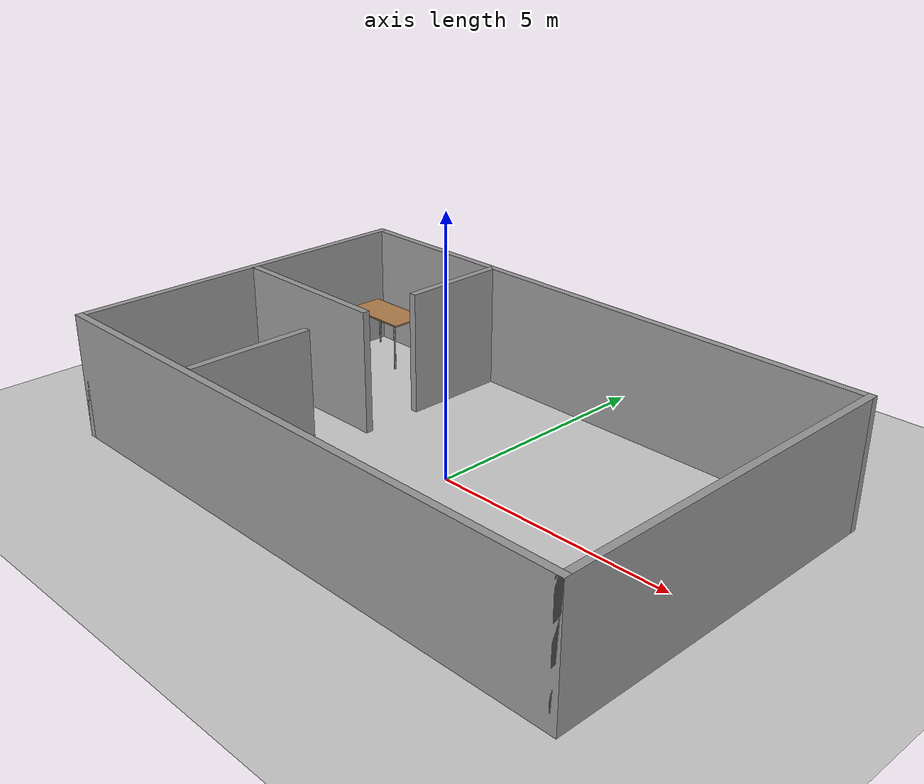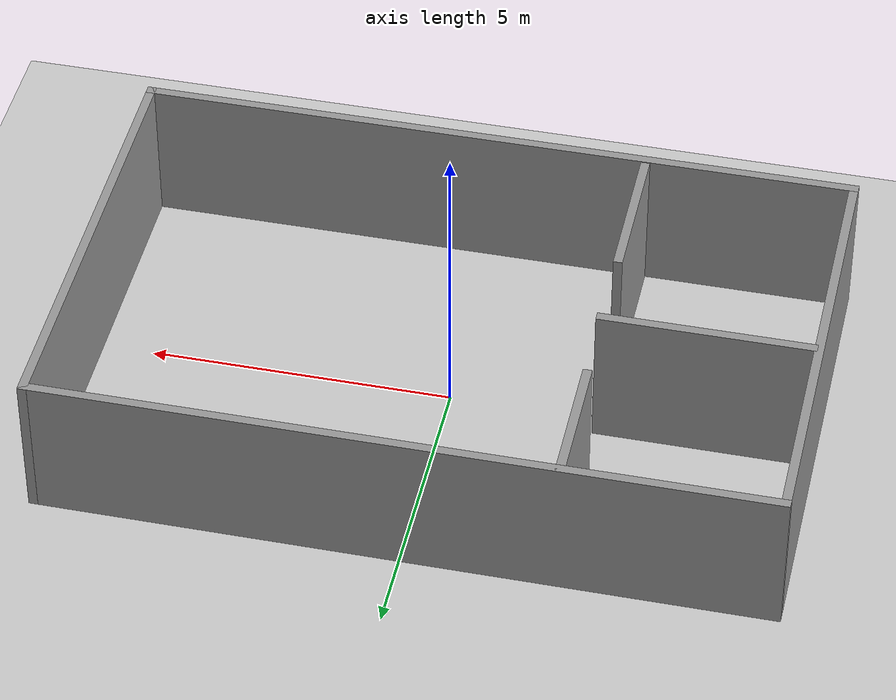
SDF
<sdf version="1.7">
 <world name="default">
  <light name="sun" type="directional">
   <pose>0 0 10 0 -0 0</pose>
   <diffuse>0.8 0.8 0.8 1</diffuse>
   <specular>0.2 0.2 0.2 1</specular>
   <attenuation>
    <range>1000</range>
    <constant>0.9</constant>
    <linear>0.01</linear>
    <quadratic>0.001</quadratic>
   </attenuation>
   <direction>-0.5 0.1 -0.9</direction>
   <spot><inner_angle>0</inner_angle><outer_angle>0</outer_angle><falloff>0</falloff></spot>
  </light>
  <model name="ground_plane">
   <static>1</static>
   <link name="link">
    <collision name="collision">
     <geometry><plane><normal>0 0 1</normal><size>100 100</size></plane></geometry>
     <surface>
      <contact><collide_bitmask>65535</collide_bitmask></contact>
      <friction><ode><mu>100</mu><mu2>50</mu2></ode></friction>
     </surface>
    </collision>
    <visual name="visual">
     <cast_shadows>0</cast_shadows>
     <geometry><plane><normal>0 0 1</normal><size>100 100</size></plane></geometry>
     <material>
      <script><uri>file://media/materials/scripts/gazebo.material</uri><name>Gazebo/Grey</name></script>
     </material>
    </visual>
   </link>
  </model>
  <gravity>0 0 -9.8</gravity>
  <magnetic_field>6e-06 2.3e-05 -4.2e-05</magnetic_field>
  <atmosphere type="adiabatic"/>
  <physics type="ode">
   <max_step_size>0.001</max_step_size>
   <real_time_factor>1</real_time_factor>
   <real_time_update_rate>1000</real_time_update_rate>
  </physics>
  <scene><ambient>0.4 0.4 0.4 1</ambient><background>0.7 0.7 0.7 1</background><shadows>1</shadows></scene>
  <spherical_coordinates>
   <surface_model>EARTH_WGS84</surface_model>
   <latitude_deg>0</latitude_deg>
   <longitude_deg>0</longitude_deg>
   <elevation>0</elevation>
   <heading_deg>0</heading_deg>
  </spherical_coordinates>
  <model name="room">
   <link name="Wall_0">
    <collision name="Wall_0_Collision">
     <geometry><box><size>12 0.15 2.5</size></box></geometry>
     <pose>0 0 1.25 0 -0 0</pose>
    </collision>
    <visual name="Wall_0_Visual">
     <pose>0 0 1.25 0 -0 0</pose>
     <geometry><box><size>12 0.15 2.5</size></box></geometry>
     <material>
      <script><uri>file://media/materials/scripts/gazebo.material</uri><name>Gazebo/Grey</name></script>
      <ambient>1 1 1 1</ambient>
     </material>
     <meta><layer>0</layer></meta>
    </visual>
    <pose>0 -3.675 0 0 -0 0</pose>
   </link>
   <link name="Wall_1">
    <collision name="Wall_1_Collision">
     <geometry><box><size>7.5 0.15 2.5</size></box></geometry>
     <pose>0 0 1.25 0 -0 0</pose>
    </collision>
    <visual name="Wall_1_Visual">
     <pose>0 0 1.25 0 -0 0</pose>
     <geometry><box><size>7.5 0.15 2.5</size></box></geometry>
     <material>
      <script><uri>file://media/materials/scripts/gazebo.material</uri><name>Gazebo/Grey</name></script>
      <ambient>1 1 1 1</ambient>
     </material>
     <meta><layer>0</layer></meta>
    </visual>
    <pose>5.925 0 0 0 -0 1.5708</pose>
   </link>
   <link name="Wall_11">
    <collision name="Wall_11_Collision">
     <geometry><box><size>2.25 0.15 2.5</size></box></geometry>
     <pose>0 0 1.25 0 -0 0</pose>
    </collision>
    <visual name="Wall_11_Visual">
     <pose>0 0 1.25 0 -0 0</pose>
     <geometry><box><size>2.25 0.15 2.5</size></box></geometry>
     <material>
      <script><uri>file://media/materials/scripts/gazebo.material</uri><name>Gazebo/Grey</name></script>
      <ambient>1 1 1 1</ambient>
     </material>
     <meta><layer>0</layer></meta>
    </visual>
    <pose>-2.49452 2.59051 0 0 -0 -1.5708</pose>
   </link>
   <link name="Wall_14">
    <collision name="Wall_14_Collision">
     <geometry><box><size>2.5 0.15 2.5</size></box></geometry>
     <pose>0 0 1.25 0 -0 0</pose>
    </collision>
    <visual name="Wall_14_Visual">
     <pose>0 0 1.25 0 -0 0</pose>
     <geometry><box><size>2.5 0.15 2.5</size></box></geometry>
     <material>
      <script><uri>file://media/materials/scripts/gazebo.material</uri><name>Gazebo/Grey</name></script>
      <ambient>1 1 1 1</ambient>
     </material>
     <meta><layer>0</layer></meta>
    </visual>
    <pose>-2.49452 -2.33449 0 0 -0 -1.5708</pose>
   </link>
   <link name="Wall_16">
    <collision name="Wall_16_Collision">
     <geometry><box><size>3.5 0.15 2.5</size></box></geometry>
     <pose>0 0 1.25 0 -0 0</pose>
    </collision>
    <visual name="Wall_16_Visual">
     <pose>0 0 1.25 0 -0 0</pose>
     <geometry><box><size>3.5 0.15 2.5</size></box></geometry>
     <material>
      <script><uri>file://media/materials/scripts/gazebo.material</uri><name>Gazebo/Grey</name></script>
      <ambient>1 1 1 1</ambient>
     </material>
     <meta><layer>0</layer></meta>
    </visual>
    <pose>-4.14797 0.22498 0 0 -0 3.14159</pose>
   </link>
   <link name="Wall_2">
    <collision name="Wall_2_Collision">
     <geometry><box><size>12 0.15 2.5</size></box></geometry>
     <pose>0 0 1.25 0 -0 0</pose>
    </collision>
    <visual name="Wall_2_Visual">
     <pose>0 0 1.25 0 -0 0</pose>
     <geometry><box><size>12 0.15 2.5</size></box></geometry>
     <material>
      <script><uri>file://media/materials/scripts/gazebo.material</uri><name>Gazebo/Grey</name></script>
      <ambient>1 1 1 1</ambient>
     </material>
     <meta><layer>0</layer></meta>
    </visual>
    <pose>0 3.675 0 0 -0 3.14159</pose>
   </link>
   <link name="Wall_3">
    <collision name="Wall_3_Collision">
     <geometry><box><size>7.5 0.15 2.5</size></box></geometry>
     <pose>0 0 1.25 0 -0 0</pose>
    </collision>
    <visual name="Wall_3_Visual">
     <pose>0 0 1.25 0 -0 0</pose>
     <geometry><box><size>7.5 0.15 2.5</size></box></geometry>
     <material>
      <script><uri>file://media/materials/scripts/gazebo.material</uri><name>Gazebo/Grey</name></script>
      <ambient>1 1 1 1</ambient>
     </material>
     <meta><layer>0</layer></meta>
    </visual>
    <pose>-5.925 0 0 0 -0 -1.5708</pose>
   </link>
   <static>1</static>
  </model>
  <model name="table">
   <static>1</static>
   <link name="link">
    <collision name="surface">
     <pose>0 0 1 0 -0 0</pose>
     <geometry><box><size>1.5 0.8 0.03</size></box></geometry>
     <surface><friction><ode><mu>0.6</mu><mu2>0.6</mu2></ode></friction></surface>
    </collision>
    <visual name="visual1">
     <pose>0 0 1 0 -0 0</pose>
     <geometry><box><size>1.5 0.8 0.03</size></box></geometry>
     <material>
      <script><uri>file://media/materials/scripts/gazebo.material</uri><name>Gazebo/Wood</name></script>
     </material>
    </visual>
    <collision name="front_left_leg">
     <pose>0.68 0.38 0.5 0 -0 0</pose>
     <geometry><cylinder><radius>0.02</radius><length>1</length></cylinder></geometry>
    </collision>
    <visual name="front_left_leg">
     <pose>0.68 0.38 0.5 0 -0 0</pose>
     <geometry><cylinder><radius>0.02</radius><length>1</length></cylinder></geometry>
     <material>
      <script><uri>file://media/materials/scripts/gazebo.material</uri><name>Gazebo/Grey</name></script>
     </material>
    </visual>
    <collision name="front_right_leg">
     <pose>0.68 -0.38 0.5 0 -0 0</pose>
     <geometry><cylinder><radius>0.02</radius><length>1</length></cylinder></geometry>
    </collision>
    <visual name="front_right_leg">
     <pose>0.68 -0.38 0.5 0 -0 0</pose>
     <geometry><cylinder><radius>0.02</radius><length>1</length></cylinder></geometry>
     <material>
      <script><uri>file://media/materials/scripts/gazebo.material</uri><name>Gazebo/Grey</name></script>
     </material>
    </visual>
    <collision name="back_right_leg">
     <pose>-0.68 -0.38 0.5 0 -0 0</pose>
     <geometry><cylinder><radius>0.02</radius><length>1</length></cylinder></geometry>
    </collision>
    <visual name="back_right_leg">
     <pose>-0.68 -0.38 0.5 0 -0 0</pose>
     <geometry><cylinder><radius>0.02</radius><length>1</length></cylinder></geometry>
     <material>
      <script><uri>file://media/materials/scripts/gazebo.material</uri><name>Gazebo/Grey</name></script>
     </material>
    </visual>
    <collision name="back_left_leg">
     <pose>-0.68 0.38 0.5 0 -0 0</pose>
     <geometry><cylinder><radius>0.02</radius><length>1</length></cylinder></geometry>
    </collision>
    <visual name="back_left_leg">
     <pose>-0.68 0.38 0.5 0 -0 0</pose>
     <geometry><cylinder><radius>0.02</radius><length>1</length></cylinder></geometry>
     <material>
      <script><uri>file://media/materials/scripts/gazebo.material</uri><name>Gazebo/Grey</name></script>
     </material>
    </visual>
   </link>
   <pose>-4.98892 2.95611 0 0 -0 0</pose>
  </model>
 </world>
</sdf>
